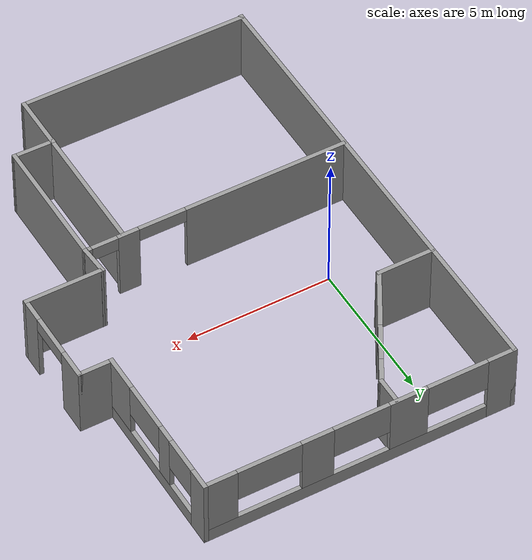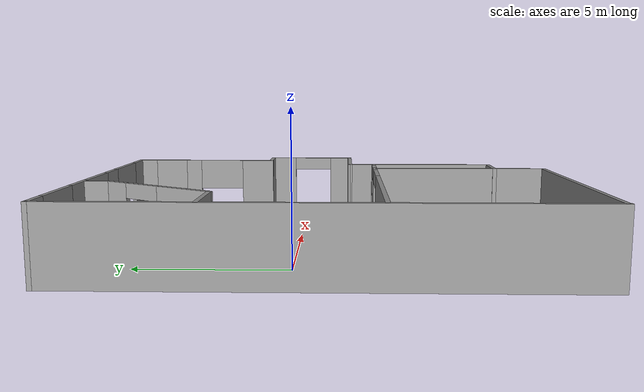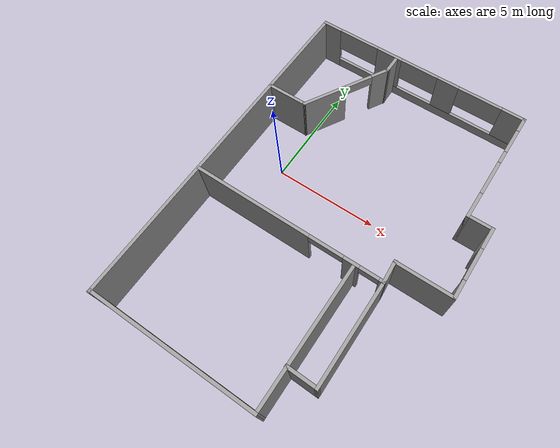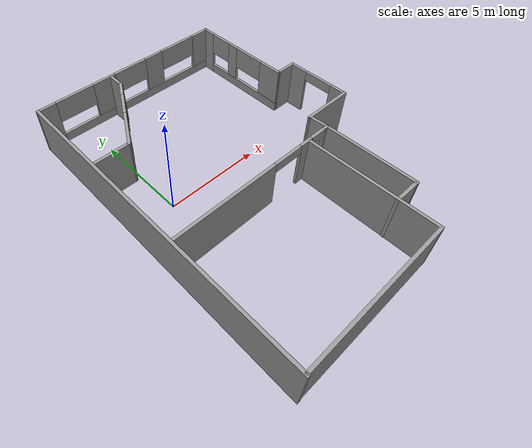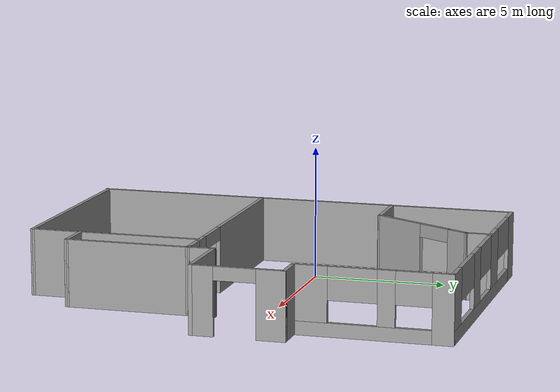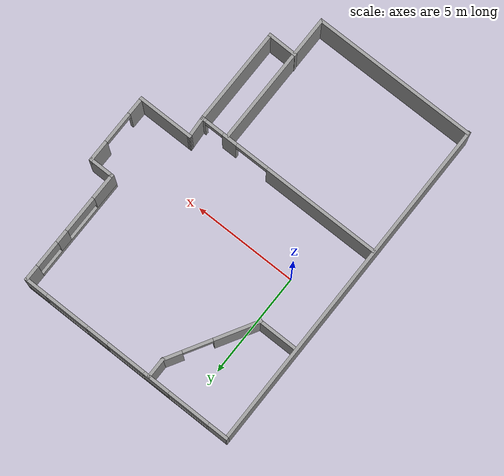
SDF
<?xml version='1.0'?>
<sdf version='1.6'>
  <model name='vx'>
    <pose frame=''>3.67142 -1.05994 0 0 -0 0</pose>
    <link name='Wall_11'>
      <pose frame=''>-1.23962 -1.71567 0 0 -0 0</pose>
      <visual name='Wall_11_Visual_0'>
        <pose frame=''>-1.77604 0 1.25 0 -0 0</pose>
        <geometry>
          <box>
            <size>5.69792 0.15 2.5</size>
          </box>
        </geometry>
        <material>
          <script>
            <uri>file://media/materials/scripts/gazebo.material</uri>
            <name>Gazebo/Grey</name>
          </script>
          <ambient>1 1 1 1</ambient>
        </material>
      </visual>
      <collision name='Wall_11_Collision_0'>
        <geometry>
          <box>
            <size>5.69792 0.15 2.5</size>
          </box>
        </geometry>
        <pose frame=''>-1.77604 0 1.25 0 -0 0</pose>
      </collision>
      <visual name='Wall_11_Visual_1'>
        <pose frame=''>3.07958 0 1.25 0 -0 0</pose>
        <geometry>
          <box>
            <size>0.735812 0.15 2.5</size>
          </box>
        </geometry>
        <material>
          <script>
            <uri>file://media/materials/scripts/gazebo.material</uri>
            <name>Gazebo/Grey</name>
          </script>
          <ambient>1 1 1 1</ambient>
        </material>
      </visual>
      <collision name='Wall_11_Collision_1'>
        <geometry>
          <box>
            <size>0.735812 0.15 2.5</size>
          </box>
        </geometry>
        <pose frame=''>3.07958 0 1.25 0 -0 0</pose>
      </collision>
      <visual name='Wall_11_Visual_2'>
        <pose frame=''>4.48624 0 1.25 0 -0 0</pose>
        <geometry>
          <box>
            <size>0.277519 0.15 2.5</size>
          </box>
        </geometry>
        <material>
          <script>
            <uri>file://media/materials/scripts/gazebo.material</uri>
            <name>Gazebo/Grey</name>
          </script>
          <ambient>1 1 1 1</ambient>
        </material>
      </visual>
      <collision name='Wall_11_Collision_2'>
        <geometry>
          <box>
            <size>0.277519 0.15 2.5</size>
          </box>
        </geometry>
        <pose frame=''>4.48624 0 1.25 0 -0 0</pose>
      </collision>
      <visual name='Wall_11_Visual_3'>
        <pose frame=''>1.89229 0 2.25 0 -0 0</pose>
        <geometry>
          <box>
            <size>1.63875 0.15 0.5</size>
          </box>
        </geometry>
        <material>
          <script>
            <uri>file://media/materials/scripts/gazebo.material</uri>
            <name>Gazebo/Grey</name>
          </script>
          <ambient>1 1 1 1</ambient>
        </material>
      </visual>
      <collision name='Wall_11_Collision_3'>
        <geometry>
          <box>
            <size>1.63875 0.15 0.5</size>
          </box>
        </geometry>
        <pose frame=''>1.89229 0 2.25 0 -0 0</pose>
      </collision>
      <visual name='Wall_11_Visual_4'>
        <pose frame=''>3.89748 0 2.25 0 -0 0</pose>
        <geometry>
          <box>
            <size>0.9 0.15 0.5</size>
          </box>
        </geometry>
        <material>
          <script>
            <uri>file://media/materials/scripts/gazebo.material</uri>
            <name>Gazebo/Grey</name>
          </script>
          <ambient>1 1 1 1</ambient>
        </material>
      </visual>
      <collision name='Wall_11_Collision_4'>
        <geometry>
          <box>
            <size>0.9 0.15 0.5</size>
          </box>
        </geometry>
        <pose frame=''>3.89748 0 2.25 0 -0 0</pose>
      </collision>
    </link>
    <link name='Wall_12'>
      <collision name='Wall_12_Collision'>
        <geometry>
          <box>
            <size>4.75 0.15 2.5</size>
          </box>
        </geometry>
        <pose frame=''>0 0 1.25 0 -0 0</pose>
      </collision>
      <visual name='Wall_12_Visual'>
        <pose frame=''>0 0 1.25 0 -0 0</pose>
        <geometry>
          <box>
            <size>4.75 0.15 2.5</size>
          </box>
        </geometry>
        <material>
          <script>
            <uri>file://media/materials/scripts/gazebo.material</uri>
            <name>Gazebo/Grey</name>
          </script>
          <ambient>1 1 1 1</ambient>
        </material>
      </visual>
      <pose frame=''>3.31038 -4.01567 0 0 0 -1.5708</pose>
    </link>
    <link name='Wall_16'>
      <collision name='Wall_16_Collision'>
        <geometry>
          <box>
            <size>1.47665 0.15 2.5</size>
          </box>
        </geometry>
        <pose frame=''>0 0 1.25 0 -0 0</pose>
      </collision>
      <visual name='Wall_16_Visual'>
        <pose frame=''>0 0 1.25 0 -0 0</pose>
        <geometry>
          <box>
            <size>1.47665 0.15 2.5</size>
          </box>
        </geometry>
        <material>
          <script>
            <uri>file://media/materials/scripts/gazebo.material</uri>
            <name>Gazebo/Grey</name>
          </script>
          <ambient>1 1 1 1</ambient>
        </material>
      </visual>
      <pose frame=''>2.64712 -6.30614 0 0 0 -0.014364</pose>
    </link>
    <link name='Wall_18'>
      <pose frame=''>-0.549999 8.175 0 0 -0 0</pose>
      <visual name='Wall_18_Visual_0'>
        <pose frame=''>-4.8718 0 1.25 0 -0 0</pose>
        <geometry>
          <box>
            <size>1.0064 0.15 2.5</size>
          </box>
        </geometry>
        <material>
          <script>
            <uri>file://media/materials/scripts/gazebo.material</uri>
            <name>Gazebo/Grey</name>
          </script>
          <ambient>1 1 1 1</ambient>
        </material>
      </visual>
      <collision name='Wall_18_Collision_0'>
        <geometry>
          <box>
            <size>1.0064 0.15 2.5</size>
          </box>
        </geometry>
        <pose frame=''>-4.8718 0 1.25 0 -0 0</pose>
      </collision>
      <visual name='Wall_18_Visual_1'>
        <pose frame=''>0.503198 0 0.25 0 -0 0</pose>
        <geometry>
          <box>
            <size>9.7436 0.15 0.5</size>
          </box>
        </geometry>
        <material>
          <script>
            <uri>file://media/materials/scripts/gazebo.material</uri>
            <name>Gazebo/Grey</name>
          </script>
          <ambient>1 1 1 1</ambient>
        </material>
      </visual>
      <collision name='Wall_18_Collision_1'>
        <geometry>
          <box>
            <size>9.7436 0.15 0.5</size>
          </box>
        </geometry>
        <pose frame=''>0.503198 0 0.25 0 -0 0</pose>
      </collision>
      <visual name='Wall_18_Visual_2'>
        <pose frame=''>-1.62324 0 1.5 0 -0 0</pose>
        <geometry>
          <box>
            <size>1.3162 0.15 2</size>
          </box>
        </geometry>
        <material>
          <script>
            <uri>file://media/materials/scripts/gazebo.material</uri>
            <name>Gazebo/Grey</name>
          </script>
          <ambient>1 1 1 1</ambient>
        </material>
      </visual>
      <collision name='Wall_18_Collision_2'>
        <geometry>
          <box>
            <size>1.3162 0.15 2</size>
          </box>
        </geometry>
        <pose frame=''>-1.62324 0 1.5 0 -0 0</pose>
      </collision>
      <visual name='Wall_18_Visual_3'>
        <pose frame=''>1.50656 0 1.5 0 -0 0</pose>
        <geometry>
          <box>
            <size>1.09068 0.15 2</size>
          </box>
        </geometry>
        <material>
          <script>
            <uri>file://media/materials/scripts/gazebo.material</uri>
            <name>Gazebo/Grey</name>
          </script>
          <ambient>1 1 1 1</ambient>
        </material>
      </visual>
      <collision name='Wall_18_Collision_3'>
        <geometry>
          <box>
            <size>1.09068 0.15 2</size>
          </box>
        </geometry>
        <pose frame=''>1.50656 0 1.5 0 -0 0</pose>
      </collision>
      <visual name='Wall_18_Visual_4'>
        <pose frame=''>4.79731 0 1.5 0 -0 0</pose>
        <geometry>
          <box>
            <size>1.15538 0.15 2</size>
          </box>
        </geometry>
        <material>
          <script>
            <uri>file://media/materials/scripts/gazebo.material</uri>
            <name>Gazebo/Grey</name>
          </script>
          <ambient>1 1 1 1</ambient>
        </material>
      </visual>
      <collision name='Wall_18_Collision_4'>
        <geometry>
          <box>
            <size>1.15538 0.15 2</size>
          </box>
        </geometry>
        <pose frame=''>4.79731 0 1.5 0 -0 0</pose>
      </collision>
      <visual name='Wall_18_Visual_5'>
        <pose frame=''>-3.32497 0 1.9 0 -0 0</pose>
        <geometry>
          <box>
            <size>2.08727 0.15 1.2</size>
          </box>
        </geometry>
        <material>
          <script>
            <uri>file://media/materials/scripts/gazebo.material</uri>
            <name>Gazebo/Grey</name>
          </script>
          <ambient>1 1 1 1</ambient>
        </material>
      </visual>
      <collision name='Wall_18_Collision_5'>
        <geometry>
          <box>
            <size>2.08727 0.15 1.2</size>
          </box>
        </geometry>
        <pose frame=''>-3.32497 0 1.9 0 -0 0</pose>
      </collision>
      <visual name='Wall_18_Visual_6'>
        <pose frame=''>-0.001959 0 1.9 0 -0 0</pose>
        <geometry>
          <box>
            <size>1.92636 0.15 1.2</size>
          </box>
        </geometry>
        <material>
          <script>
            <uri>file://media/materials/scripts/gazebo.material</uri>
            <name>Gazebo/Grey</name>
          </script>
          <ambient>1 1 1 1</ambient>
        </material>
      </visual>
      <collision name='Wall_18_Collision_6'>
        <geometry>
          <box>
            <size>1.92636 0.15 1.2</size>
          </box>
        </geometry>
        <pose frame=''>-0.001959 0 1.9 0 -0 0</pose>
      </collision>
      <visual name='Wall_18_Visual_7'>
        <pose frame=''>3.13576 0 1.9 0 -0 0</pose>
        <geometry>
          <box>
            <size>2.16772 0.15 1.2</size>
          </box>
        </geometry>
        <material>
          <script>
            <uri>file://media/materials/scripts/gazebo.material</uri>
            <name>Gazebo/Grey</name>
          </script>
          <ambient>1 1 1 1</ambient>
        </material>
      </visual>
      <collision name='Wall_18_Collision_7'>
        <geometry>
          <box>
            <size>2.16772 0.15 1.2</size>
          </box>
        </geometry>
        <pose frame=''>3.13576 0 1.9 0 -0 0</pose>
      </collision>
    </link>
    <link name='Wall_19'>
      <pose frame=''>4.75 5.375 0 0 0 -1.5708</pose>
      <visual name='Wall_19_Visual_0'>
        <pose frame=''>-2.48729 0 1.25 0 -0 0</pose>
        <geometry>
          <box>
            <size>0.77542 0.15 2.5</size>
          </box>
        </geometry>
        <material>
          <script>
            <uri>file://media/materials/scripts/gazebo.material</uri>
            <name>Gazebo/Grey</name>
          </script>
          <ambient>1 1 1 1</ambient>
        </material>
      </visual>
      <collision name='Wall_19_Collision_0'>
        <geometry>
          <box>
            <size>0.77542 0.15 2.5</size>
          </box>
        </geometry>
        <pose frame=''>-2.48729 0 1.25 0 -0 0</pose>
      </collision>
      <visual name='Wall_19_Visual_1'>
        <pose frame=''>0.38771 0 0.25 0 -0 0</pose>
        <geometry>
          <box>
            <size>4.97458 0.15 0.5</size>
          </box>
        </geometry>
        <material>
          <script>
            <uri>file://media/materials/scripts/gazebo.material</uri>
            <name>Gazebo/Grey</name>
          </script>
          <ambient>1 1 1 1</ambient>
        </material>
      </visual>
      <collision name='Wall_19_Collision_1'>
        <geometry>
          <box>
            <size>4.97458 0.15 0.5</size>
          </box>
        </geometry>
        <pose frame=''>0.38771 0 0.25 0 -0 0</pose>
      </collision>
      <visual name='Wall_19_Visual_2'>
        <pose frame=''>-0.502822 0 1.5 0 -0 0</pose>
        <geometry>
          <box>
            <size>0.628064 0.15 2</size>
          </box>
        </geometry>
        <material>
          <script>
            <uri>file://media/materials/scripts/gazebo.material</uri>
            <name>Gazebo/Grey</name>
          </script>
          <ambient>1 1 1 1</ambient>
        </material>
      </visual>
      <collision name='Wall_19_Collision_2'>
        <geometry>
          <box>
            <size>0.628064 0.15 2</size>
          </box>
        </geometry>
        <pose frame=''>-0.502822 0 1.5 0 -0 0</pose>
      </collision>
      <visual name='Wall_19_Visual_3'>
        <pose frame=''>2.22583 0 1.5 0 -0 0</pose>
        <geometry>
          <box>
            <size>1.29834 0.15 2</size>
          </box>
        </geometry>
        <material>
          <script>
            <uri>file://media/materials/scripts/gazebo.material</uri>
            <name>Gazebo/Grey</name>
          </script>
          <ambient>1 1 1 1</ambient>
        </material>
      </visual>
      <collision name='Wall_19_Collision_3'>
        <geometry>
          <box>
            <size>1.29834 0.15 2</size>
          </box>
        </geometry>
        <pose frame=''>2.22583 0 1.5 0 -0 0</pose>
      </collision>
      <visual name='Wall_19_Visual_4'>
        <pose frame=''>-1.45822 0 1.9 0 -0 0</pose>
        <geometry>
          <box>
            <size>1.28273 0.15 1.2</size>
          </box>
        </geometry>
        <material>
          <script>
            <uri>file://media/materials/scripts/gazebo.material</uri>
            <name>Gazebo/Grey</name>
          </script>
          <ambient>1 1 1 1</ambient>
        </material>
      </visual>
      <collision name='Wall_19_Collision_4'>
        <geometry>
          <box>
            <size>1.28273 0.15 1.2</size>
          </box>
        </geometry>
        <pose frame=''>-1.45822 0 1.9 0 -0 0</pose>
      </collision>
      <visual name='Wall_19_Visual_5'>
        <pose frame=''>0.693936 0 1.9 0 -0 0</pose>
        <geometry>
          <box>
            <size>1.76545 0.15 1.2</size>
          </box>
        </geometry>
        <material>
          <script>
            <uri>file://media/materials/scripts/gazebo.material</uri>
            <name>Gazebo/Grey</name>
          </script>
          <ambient>1 1 1 1</ambient>
        </material>
      </visual>
      <collision name='Wall_19_Collision_5'>
        <geometry>
          <box>
            <size>1.76545 0.15 1.2</size>
          </box>
        </geometry>
        <pose frame=''>0.693936 0 1.9 0 -0 0</pose>
      </collision>
    </link>
    <link name='Wall_20'>
      <collision name='Wall_20_Collision'>
        <geometry>
          <box>
            <size>1.25 0.15 2.5</size>
          </box>
        </geometry>
        <pose frame=''>0 0 1.25 0 -0 0</pose>
      </collision>
      <visual name='Wall_20_Visual'>
        <pose frame=''>0 0 1.25 0 -0 0</pose>
        <geometry>
          <box>
            <size>1.25 0.15 2.5</size>
          </box>
        </geometry>
        <material>
          <script>
            <uri>file://media/materials/scripts/gazebo.material</uri>
            <name>Gazebo/Grey</name>
          </script>
          <ambient>1 1 1 1</ambient>
        </material>
      </visual>
      <pose frame=''>5.3 2.575 0 0 -0 0</pose>
    </link>
    <link name='Wall_22'>
      <pose frame=''>5.85 0.9 0 0 0 -1.5708</pose>
      <visual name='Wall_22_Visual_0'>
        <pose frame=''>-1.21754 0 1.25 0 -0 0</pose>
        <geometry>
          <box>
            <size>1.06492 0.15 2.5</size>
          </box>
        </geometry>
        <material>
          <script>
            <uri>file://media/materials/scripts/gazebo.material</uri>
            <name>Gazebo/Grey</name>
          </script>
          <ambient>1 1 1 1</ambient>
        </material>
      </visual>
      <collision name='Wall_22_Collision_0'>
        <geometry>
          <box>
            <size>1.06492 0.15 2.5</size>
          </box>
        </geometry>
        <pose frame=''>-1.21754 0 1.25 0 -0 0</pose>
      </collision>
      <visual name='Wall_22_Visual_1'>
        <pose frame=''>1.29907 0 1.25 0 -0 0</pose>
        <geometry>
          <box>
            <size>0.901862 0.15 2.5</size>
          </box>
        </geometry>
        <material>
          <script>
            <uri>file://media/materials/scripts/gazebo.material</uri>
            <name>Gazebo/Grey</name>
          </script>
          <ambient>1 1 1 1</ambient>
        </material>
      </visual>
      <collision name='Wall_22_Collision_1'>
        <geometry>
          <box>
            <size>0.901862 0.15 2.5</size>
          </box>
        </geometry>
        <pose frame=''>1.29907 0 1.25 0 -0 0</pose>
      </collision>
      <visual name='Wall_22_Visual_2'>
        <pose frame=''>0.081529 0 2.25 0 -0 0</pose>
        <geometry>
          <box>
            <size>1.53322 0.15 0.5</size>
          </box>
        </geometry>
        <material>
          <script>
            <uri>file://media/materials/scripts/gazebo.material</uri>
            <name>Gazebo/Grey</name>
          </script>
          <ambient>1 1 1 1</ambient>
        </material>
      </visual>
      <collision name='Wall_22_Collision_2'>
        <geometry>
          <box>
            <size>1.53322 0.15 0.5</size>
          </box>
        </geometry>
        <pose frame=''>0.081529 0 2.25 0 -0 0</pose>
      </collision>
    </link>
    <link name='Wall_23'>
      <collision name='Wall_23_Collision'>
        <geometry>
          <box>
            <size>2.75 0.15 2.5</size>
          </box>
        </geometry>
        <pose frame=''>0 0 1.25 0 -0 0</pose>
      </collision>
      <visual name='Wall_23_Visual'>
        <pose frame=''>0 0 1.25 0 -0 0</pose>
        <geometry>
          <box>
            <size>2.75 0.15 2.5</size>
          </box>
        </geometry>
        <material>
          <script>
            <uri>file://media/materials/scripts/gazebo.material</uri>
            <name>Gazebo/Grey</name>
          </script>
          <ambient>1 1 1 1</ambient>
        </material>
      </visual>
      <pose frame=''>4.55 -0.775 0 0 -0 3.14159</pose>
    </link>
    <link name='Wall_24'>
      <collision name='Wall_24_Collision'>
        <geometry>
          <box>
            <size>1.09261 0.15 2.5</size>
          </box>
        </geometry>
        <pose frame=''>0 0 1.25 0 -0 0</pose>
      </collision>
      <visual name='Wall_24_Visual'>
        <pose frame=''>0 0 1.25 0 -0 0</pose>
        <geometry>
          <box>
            <size>1.09261 0.15 2.5</size>
          </box>
        </geometry>
        <material>
          <script>
            <uri>file://media/materials/scripts/gazebo.material</uri>
            <name>Gazebo/Grey</name>
          </script>
          <ambient>1 1 1 1</ambient>
        </material>
      </visual>
      <pose frame=''>3.28019 -1.24534 0 0 0 -1.50669</pose>
    </link>
    <link name='Wall_26'>
      <collision name='Wall_26_Collision'>
        <geometry>
          <box>
            <size>2 0.15 2.5</size>
          </box>
        </geometry>
        <pose frame=''>0 0 1.25 0 -0 0</pose>
      </collision>
      <visual name='Wall_26_Visual'>
        <pose frame=''>0 0 1.25 0 -0 0</pose>
        <geometry>
          <box>
            <size>2 0.15 2.5</size>
          </box>
        </geometry>
        <material>
          <script>
            <uri>file://media/materials/scripts/gazebo.material</uri>
            <name>Gazebo/Grey</name>
          </script>
          <ambient>1 1 1 1</ambient>
        </material>
      </visual>
      <pose frame=''>-4.87677 3.51823 0 0 -0 0</pose>
    </link>
    <link name='Wall_28'>
      <pose frame=''>-2.86427 5.40183 0 0 -0 1.0472</pose>
      <visual name='Wall_28_Visual_0'>
        <pose frame=''>-1.15957 0 1.25 0 -0 0</pose>
        <geometry>
          <box>
            <size>2.18085 0.15 2.5</size>
          </box>
        </geometry>
        <material>
          <script>
            <uri>file://media/materials/scripts/gazebo.material</uri>
            <name>Gazebo/Grey</name>
          </script>
          <ambient>1 1 1 1</ambient>
        </material>
      </visual>
      <collision name='Wall_28_Collision_0'>
        <geometry>
          <box>
            <size>2.18085 0.15 2.5</size>
          </box>
        </geometry>
        <pose frame=''>-1.15957 0 1.25 0 -0 0</pose>
      </collision>
      <visual name='Wall_28_Visual_1'>
        <pose frame=''>1.77699 0 1.25 0 -0 0</pose>
        <geometry>
          <box>
            <size>0.946023 0.15 2.5</size>
          </box>
        </geometry>
        <material>
          <script>
            <uri>file://media/materials/scripts/gazebo.material</uri>
            <name>Gazebo/Grey</name>
          </script>
          <ambient>1 1 1 1</ambient>
        </material>
      </visual>
      <collision name='Wall_28_Collision_1'>
        <geometry>
          <box>
            <size>0.946023 0.15 2.5</size>
          </box>
        </geometry>
        <pose frame=''>1.77699 0 1.25 0 -0 0</pose>
      </collision>
      <visual name='Wall_28_Visual_2'>
        <pose frame=''>0.617415 0 2.25 0 -0 0</pose>
        <geometry>
          <box>
            <size>1.37312 0.15 0.5</size>
          </box>
        </geometry>
        <material>
          <script>
            <uri>file://media/materials/scripts/gazebo.material</uri>
            <name>Gazebo/Grey</name>
          </script>
          <ambient>1 1 1 1</ambient>
        </material>
      </visual>
      <collision name='Wall_28_Collision_2'>
        <geometry>
          <box>
            <size>1.37312 0.15 0.5</size>
          </box>
        </geometry>
        <pose frame=''>0.617415 0 2.25 0 -0 0</pose>
      </collision>
    </link>
    <link name='Wall_29'>
      <collision name='Wall_29_Collision'>
        <geometry>
          <box>
            <size>1 0.15 2.5</size>
          </box>
        </geometry>
        <pose frame=''>0 0 1.25 0 -0 0</pose>
      </collision>
      <visual name='Wall_29_Visual'>
        <pose frame=''>0 0 1.25 0 -0 0</pose>
        <geometry>
          <box>
            <size>1 0.15 2.5</size>
          </box>
        </geometry>
        <material>
          <script>
            <uri>file://media/materials/scripts/gazebo.material</uri>
            <name>Gazebo/Grey</name>
          </script>
          <ambient>1 1 1 1</ambient>
        </material>
      </visual>
      <pose frame=''>-1.77677 7.71044 0 0 -0 1.5708</pose>
    </link>
    <link name='Wall_3'>
      <collision name='Wall_3_Collision'>
        <geometry>
          <box>
            <size>16.5 0.15 2.5</size>
          </box>
        </geometry>
        <pose frame=''>0 0 1.25 0 -0 0</pose>
      </collision>
      <visual name='Wall_3_Visual'>
        <pose frame=''>0 0 1.25 0 -0 0</pose>
        <geometry>
          <box>
            <size>16.5 0.15 2.5</size>
          </box>
        </geometry>
        <material>
          <script>
            <uri>file://media/materials/scripts/gazebo.material</uri>
            <name>Gazebo/Grey</name>
          </script>
          <ambient>1 1 1 1</ambient>
        </material>
      </visual>
      <pose frame=''>-5.85 0 0 0 0 -1.5708</pose>
    </link>
    <link name='Wall_7'>
      <collision name='Wall_7_Collision'>
        <geometry>
          <box>
            <size>6.5 0.15 2.5</size>
          </box>
        </geometry>
        <pose frame=''>0 0 1.25 0 -0 0</pose>
      </collision>
      <visual name='Wall_7_Visual'>
        <pose frame=''>0 0 1.25 0 -0 0</pose>
        <geometry>
          <box>
            <size>6.5 0.15 2.5</size>
          </box>
        </geometry>
        <material>
          <script>
            <uri>file://media/materials/scripts/gazebo.material</uri>
            <name>Gazebo/Grey</name>
          </script>
          <ambient>1 1 1 1</ambient>
        </material>
      </visual>
      <pose frame=''>1.99983 -4.98666 0 0 0 -1.5708</pose>
    </link>
    <link name='Wall_9'>
      <collision name='Wall_9_Collision'>
        <geometry>
          <box>
            <size>7.96926 0.15 2.5</size>
          </box>
        </geometry>
        <pose frame=''>0 0 1.25 0 -0 0</pose>
      </collision>
      <visual name='Wall_9_Visual'>
        <pose frame=''>0 0 1.25 0 -0 0</pose>
        <geometry>
          <box>
            <size>7.96926 0.15 2.5</size>
          </box>
        </geometry>
        <material>
          <script>
            <uri>file://media/materials/scripts/gazebo.material</uri>
            <name>Gazebo/Grey</name>
          </script>
          <ambient>1 1 1 1</ambient>
        </material>
      </visual>
      <pose frame=''>-1.90979 -8.15304 0 0 0 -0.002206</pose>
    </link>
    <static>1</static>
  </model>
</sdf>
